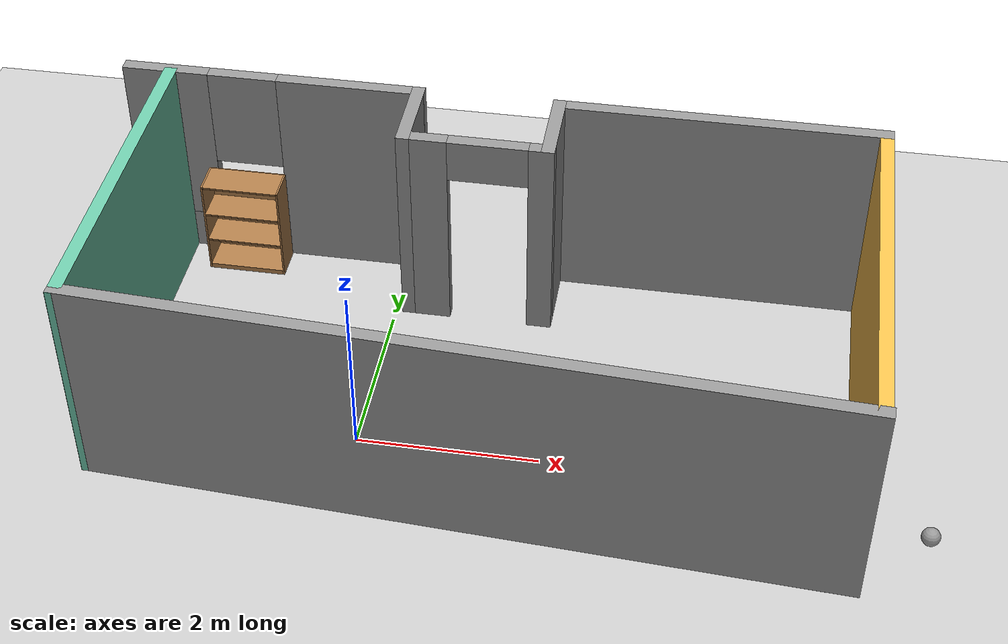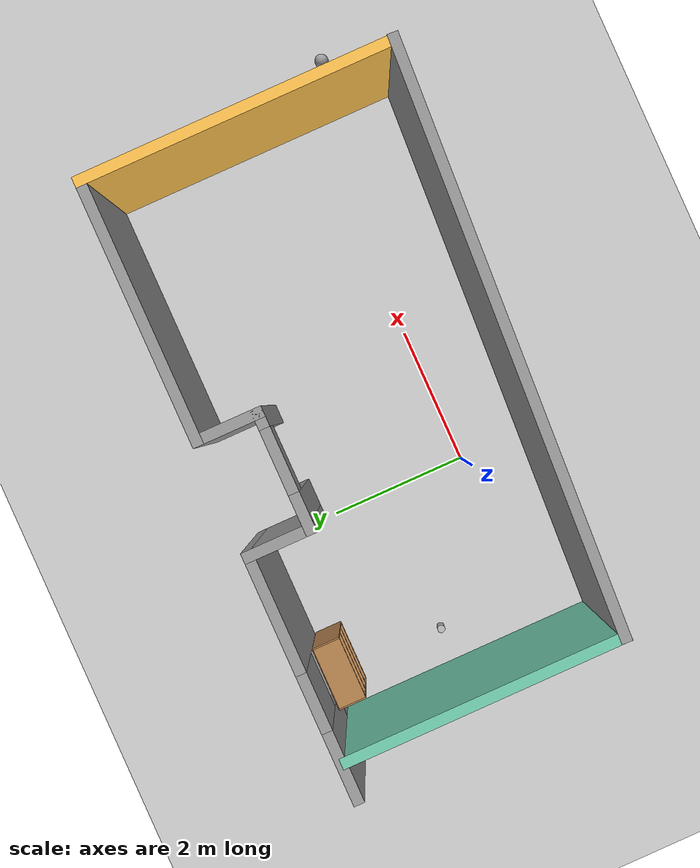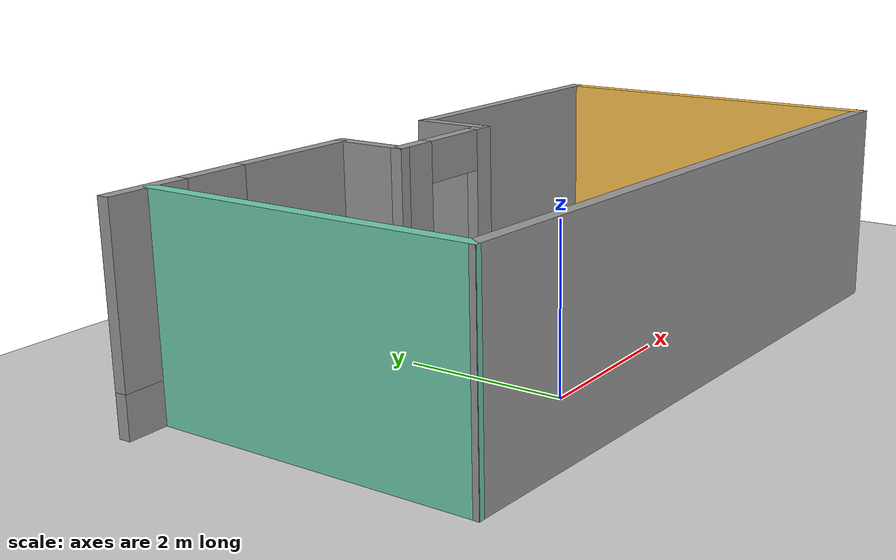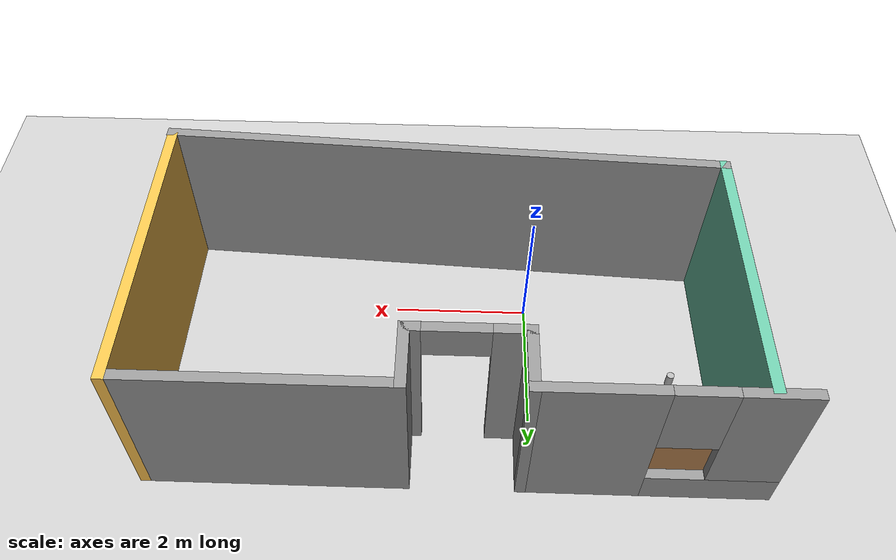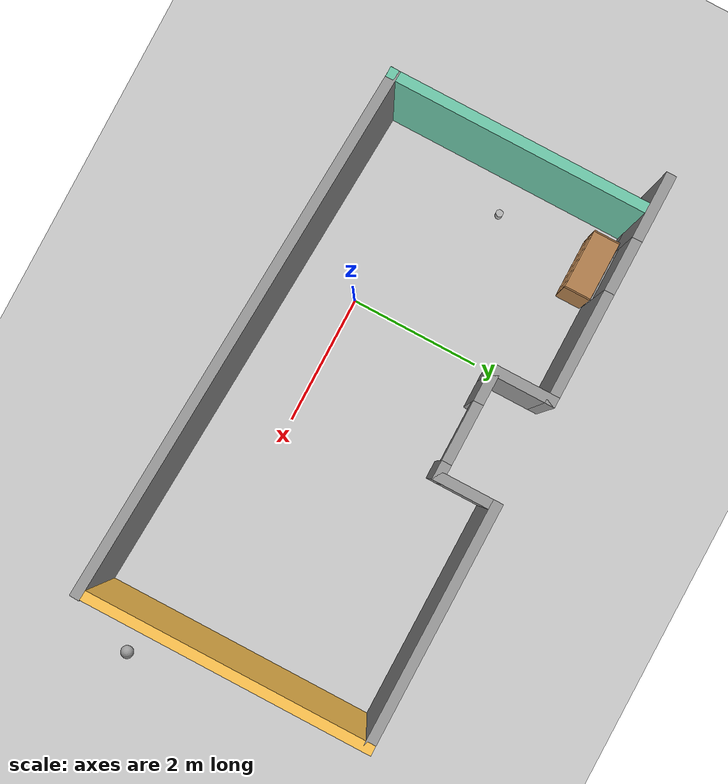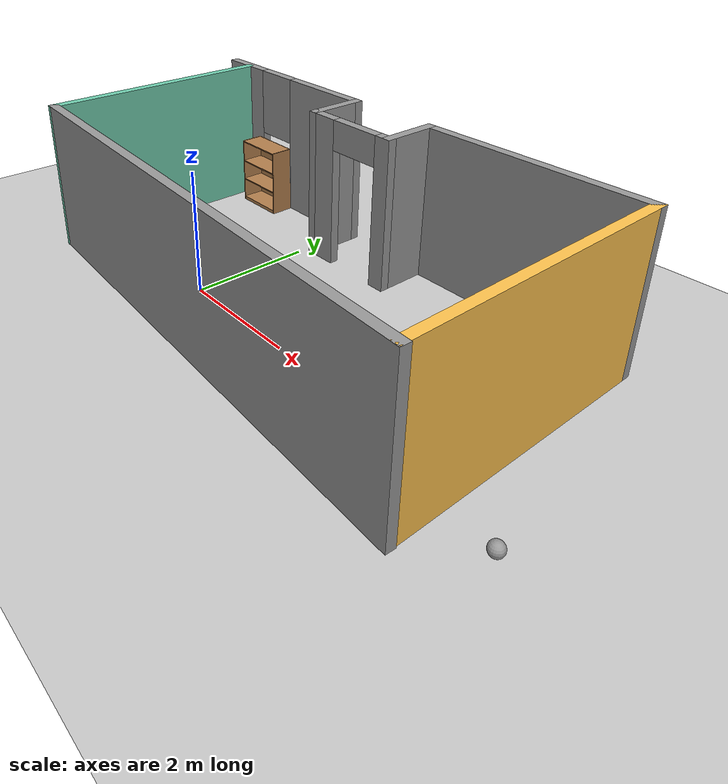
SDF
<sdf version="1.6">
 <world name="default">
  <plugin name="hello" filename="libhello.so"/>
  <light name="sun" type="directional">
   <pose>0 0 10 0 -0 0</pose>
   <diffuse>0.8 0.8 0.8 1</diffuse>
   <specular>0.1 0.1 0.1 1</specular>
   <attenuation>
    <range>1000</range>
    <constant>0.9</constant>
    <linear>0.01</linear>
    <quadratic>0.001</quadratic>
   </attenuation>
   <direction>-0.5 0.5 -1</direction>
  </light>
  <model name="ground_plane">
   <static>1</static>
   <link name="link">
    <collision name="collision">
     <geometry><plane><normal>0 0 1</normal><size>100 100</size></plane></geometry>
     <surface><friction><ode><mu>100</mu><mu2>50</mu2></ode></friction></surface>
    </collision>
    <visual name="visual">
     <cast_shadows>0</cast_shadows>
     <geometry><plane><normal>0 0 1</normal><size>100 100</size></plane></geometry>
     <material>
      <script><uri>file://media/materials/scripts/gazebo.material</uri><name>Gazebo/Grey</name></script>
     </material>
    </visual>
   </link>
  </model>
  <gravity>0 0 -9.8</gravity>
  <magnetic_field>6e-06 2.3e-05 -4.2e-05</magnetic_field>
  <atmosphere type="adiabatic"/>
  <physics name="default_physics" default="0" type="ode">
   <max_step_size>0.001</max_step_size>
   <real_time_factor>1</real_time_factor>
   <real_time_update_rate>1000</real_time_update_rate>
  </physics>
  <scene><ambient>0.4 0.4 0.4 1</ambient><background>0.7 0.7 0.7 1</background><shadows>1</shadows></scene>
  <spherical_coordinates>
   <surface_model>EARTH_WGS84</surface_model>
   <latitude_deg>0</latitude_deg>
   <longitude_deg>0</longitude_deg>
   <elevation>0</elevation>
   <heading_deg>0</heading_deg>
  </spherical_coordinates>
  <model name="building">
   <pose>1.07807 0.89796 0 0 -0 0</pose>
   <link name="Wall_0">
    <collision name="Wall_0_Collision">
     <geometry><box><size>8.24197 0.15 2.5</size></box></geometry>
     <pose>0 0 1.25 0 -0 0</pose>
    </collision>
    <visual name="Wall_0_Visual">
     <pose>0 0 1.25 0 -0 0</pose>
     <geometry><box><size>8.24197 0.15 2.5</size></box></geometry>
     <material>
      <script><uri>file://media/materials/scripts/gazebo.material</uri><name>Gazebo/Grey</name></script>
      <ambient>1 1 1 1</ambient>
     </material>
     <meta><layer>0</layer></meta>
    </visual>
    <pose>0.238016 -1.95802 0 0 0 -0.054402</pose>
   </link>
   <link name="Wall_1">
    <collision name="Wall_1_Collision">
     <geometry><box><size>4.5 0.15 2.5</size></box></geometry>
     <pose>0 0 1.25 0 -0 0</pose>
    </collision>
    <visual name="Wall_1_Visual">
     <pose>0 0 1.25 0 -0 0</pose>
     <geometry><box><size>4.5 0.15 2.5</size></box></geometry>
     <material>
      <script><uri>file://media/materials/scripts/gazebo.material</uri><name>Gazebo/Grey</name></script>
      <ambient>1 0.764706 0.305882 1</ambient>
     </material>
     <meta><layer>0</layer></meta>
    </visual>
    <pose>4.26802 0.006983 0 0 -0 1.5708</pose>
   </link>
   <link name="Wall_12">
    <collision name="Wall_12_Collision">
     <geometry><box><size>4 0.15 2.5</size></box></geometry>
     <pose>0 0 1.25 0 -0 0</pose>
    </collision>
    <visual name="Wall_12_Visual">
     <pose>0 0 1.25 0 -0 0</pose>
     <geometry><box><size>4 0.15 2.5</size></box></geometry>
     <material>
      <script><uri>file://media/materials/scripts/gazebo.material</uri><name>Gazebo/Grey</name></script>
      <ambient>0.435294 0.796078 0.67451 1</ambient>
     </material>
     <meta><layer>0</layer></meta>
    </visual>
    <pose>-3.80198 0.186983 0 0 -0 1.5708</pose>
   </link>
   <link name="Wall_5">
    <collision name="Wall_5_Collision">
     <geometry><box><size>3.75 0.15 2.5</size></box></geometry>
     <pose>0 0 1.25 0 -0 0</pose>
    </collision>
    <visual name="Wall_5_Visual">
     <pose>0 0 1.25 0 -0 0</pose>
     <geometry><box><size>3.75 0.15 2.5</size></box></geometry>
     <material>
      <script><uri>file://media/materials/scripts/gazebo.material</uri><name>Gazebo/Grey</name></script>
      <ambient>1 1 1 1</ambient>
     </material>
     <meta><layer>0</layer></meta>
    </visual>
    <pose>2.46802 2.18198 0 0 -0 3.14159</pose>
   </link>
   <link name="Wall_6">
    <collision name="Wall_6_Collision">
     <geometry><box><size>1 0.15 2.5</size></box></geometry>
     <pose>0 0 1.25 0 -0 0</pose>
    </collision>
    <visual name="Wall_6_Visual">
     <pose>0 0 1.25 0 -0 0</pose>
     <geometry><box><size>1 0.15 2.5</size></box></geometry>
     <material>
      <script><uri>file://media/materials/scripts/gazebo.material</uri><name>Gazebo/Grey</name></script>
      <ambient>1 1 1 1</ambient>
     </material>
     <meta><layer>0</layer></meta>
    </visual>
    <pose>0.668016 1.75698 0 0 0 -1.5708</pose>
   </link>
   <link name="Wall_7">
    <pose>-0.131984 1.33198 0 0 -0 3.14159</pose>
    <visual name="Wall_7_Visual_0">
     <pose>-0.7325 0 1.25 0 -0 0</pose>
     <geometry><box><size>0.285 0.15 2.5</size></box></geometry>
     <material>
      <script><uri>file://media/materials/scripts/gazebo.material</uri><name>Gazebo/Grey</name></script>
      <ambient>1 1 1 1</ambient>
     </material>
     <meta><layer>0</layer></meta>
    </visual>
    <collision name="Wall_7_Collision_0">
     <geometry><box><size>0.285 0.15 2.5</size></box></geometry>
     <pose>-0.7325 0 1.25 0 -0 0</pose>
    </collision>
    <visual name="Wall_7_Visual_1">
     <pose>0.5925 0 1.25 0 -0 0</pose>
     <geometry><box><size>0.565 0.15 2.5</size></box></geometry>
     <material>
      <script><uri>file://media/materials/scripts/gazebo.material</uri><name>Gazebo/Grey</name></script>
      <ambient>1 1 1 1</ambient>
     </material>
     <meta><layer>0</layer></meta>
    </visual>
    <collision name="Wall_7_Collision_1">
     <geometry><box><size>0.565 0.15 2.5</size></box></geometry>
     <pose>0.5925 0 1.25 0 -0 0</pose>
    </collision>
    <visual name="Wall_7_Visual_2">
     <pose>-0.14 0 2.25 0 -0 0</pose>
     <geometry><box><size>0.9 0.15 0.5</size></box></geometry>
     <material>
      <script><uri>file://media/materials/scripts/gazebo.material</uri><name>Gazebo/Grey</name></script>
      <ambient>1 1 1 1</ambient>
     </material>
     <meta><layer>0</layer></meta>
    </visual>
    <collision name="Wall_7_Collision_2">
     <geometry><box><size>0.9 0.15 0.5</size></box></geometry>
     <pose>-0.14 0 2.25 0 -0 0</pose>
    </collision>
   </link>
   <link name="Wall_8">
    <collision name="Wall_8_Collision">
     <geometry><box><size>1 0.15 2.5</size></box></geometry>
     <pose>0 0 1.25 0 -0 0</pose>
    </collision>
    <visual name="Wall_8_Visual">
     <pose>0 0 1.25 0 -0 0</pose>
     <geometry><box><size>1 0.15 2.5</size></box></geometry>
     <material>
      <script><uri>file://media/materials/scripts/gazebo.material</uri><name>Gazebo/Grey</name></script>
      <ambient>1 1 1 1</ambient>
     </material>
     <meta><layer>0</layer></meta>
    </visual>
    <pose>-0.931984 1.75698 0 0 -0 1.5708</pose>
   </link>
   <link name="Wall_9">
    <pose>-2.60698 2.18198 0 0 -0 3.14159</pose>
    <visual name="Wall_9_Visual_0">
     <pose>-0.8975 0 1.25 0 -0 0</pose>
     <geometry><box><size>1.705 0.15 2.5</size></box></geometry>
     <material>
      <script><uri>file://media/materials/scripts/gazebo.material</uri><name>Gazebo/Grey</name></script>
      <ambient>1 1 1 1</ambient>
     </material>
     <meta><layer>0</layer></meta>
    </visual>
    <collision name="Wall_9_Collision_0">
     <geometry><box><size>1.705 0.15 2.5</size></box></geometry>
     <pose>-0.8975 0 1.25 0 -0 0</pose>
    </collision>
    <visual name="Wall_9_Visual_1">
     <pose>0.8525 0 0.25 0 -0 0</pose>
     <geometry><box><size>1.795 0.15 0.5</size></box></geometry>
     <material>
      <script><uri>file://media/materials/scripts/gazebo.material</uri><name>Gazebo/Grey</name></script>
      <ambient>1 1 1 1</ambient>
     </material>
     <meta><layer>0</layer></meta>
    </visual>
    <collision name="Wall_9_Collision_1">
     <geometry><box><size>1.795 0.15 0.5</size></box></geometry>
     <pose>0.8525 0 0.25 0 -0 0</pose>
    </collision>
    <visual name="Wall_9_Visual_2">
     <pose>1.2525 0 1.5 0 -0 0</pose>
     <geometry><box><size>0.995 0.15 2</size></box></geometry>
     <material>
      <script><uri>file://media/materials/scripts/gazebo.material</uri><name>Gazebo/Grey</name></script>
      <ambient>1 1 1 1</ambient>
     </material>
     <meta><layer>0</layer></meta>
    </visual>
    <collision name="Wall_9_Collision_2">
     <geometry><box><size>0.995 0.15 2</size></box></geometry>
     <pose>1.2525 0 1.5 0 -0 0</pose>
    </collision>
    <visual name="Wall_9_Visual_3">
     <pose>0.355 0 1.9 0 -0 0</pose>
     <geometry><box><size>0.8 0.15 1.2</size></box></geometry>
     <material>
      <script><uri>file://media/materials/scripts/gazebo.material</uri><name>Gazebo/Grey</name></script>
      <ambient>1 1 1 1</ambient>
     </material>
     <meta><layer>0</layer></meta>
    </visual>
    <collision name="Wall_9_Collision_3">
     <geometry><box><size>0.8 0.15 1.2</size></box></geometry>
     <pose>0.355 0 1.9 0 -0 0</pose>
    </collision>
   </link>
   <static>1</static>
  </model>
  <model name="beer">
   <link name="link">
    <pose>0 0 0.115 0 -0 0</pose>
    <inertial>
     <mass>0.39</mass>
     <inertia><ixx>0.00058</ixx><ixy>0</ixy><ixz>0</ixz><iyy>0.00058</iyy><iyz>0</iyz><izz>0.00019</izz></inertia>
    </inertial>
    <collision name="collision">
     <geometry><cylinder><radius>0.055</radius><length>0.23</length></cylinder></geometry>
    </collision>
    <visual name="visual">
     <geometry><cylinder><radius>0.055</radius><length>0.23</length></cylinder></geometry>
     <material>
      <script>
       <uri>model://beer/materials/scripts</uri>
       <uri>model://beer/materials/textures</uri>
       <name>Beer/Diffuse</name>
      </script>
     </material>
    </visual>
   </link>
   <pose>-2.1264 1.28097 -7e-06 0 0 -3e-06</pose>
  </model>
  <model name="bookshelf">
   <static>1</static>
   <link name="link">
    <inertial><mass>1</mass></inertial>
    <collision name="back">
     <pose>0 0.005 0.6 0 -0 0</pose>
     <geometry><box><size>0.9 0.01 1.2</size></box></geometry>
    </collision>
    <visual name="visual1">
     <pose>0 0.005 0.6 0 -0 0</pose>
     <geometry><box><size>0.9 0.01 1.2</size></box></geometry>
     <material>
      <script><uri>file://media/materials/scripts/gazebo.material</uri><name>Gazebo/Wood</name></script>
     </material>
    </visual>
    <collision name="left_side">
     <pose>0.45 -0.195 0.6 0 -0 0</pose>
     <geometry><box><size>0.02 0.4 1.2</size></box></geometry>
    </collision>
    <visual name="visual2">
     <pose>0.45 -0.195 0.6 0 -0 0</pose>
     <geometry><box><size>0.02 0.4 1.2</size></box></geometry>
     <material>
      <script><uri>file://media/materials/scripts/gazebo.material</uri><name>Gazebo/Wood</name></script>
     </material>
    </visual>
    <collision name="right_side">
     <pose>-0.45 -0.195 0.6 0 -0 0</pose>
     <geometry><box><size>0.02 0.4 1.2</size></box></geometry>
    </collision>
    <visual name="visual3">
     <pose>-0.45 -0.195 0.6 0 -0 0</pose>
     <geometry><box><size>0.02 0.4 1.2</size></box></geometry>
     <material>
      <script><uri>file://media/materials/scripts/gazebo.material</uri><name>Gazebo/Wood</name></script>
     </material>
    </visual>
    <collision name="bottom">
     <pose>0 -0.195 0.03 0 -0 0</pose>
     <geometry><box><size>0.88 0.4 0.06</size></box></geometry>
    </collision>
    <visual name="visual4">
     <pose>0 -0.195 0.03 0 -0 0</pose>
     <geometry><box><size>0.88 0.4 0.06</size></box></geometry>
     <material>
      <script><uri>file://media/materials/scripts/gazebo.material</uri><name>Gazebo/Wood</name></script>
     </material>
    </visual>
    <collision name="top">
     <pose>0 -0.195 1.19 0 -0 0</pose>
     <geometry><box><size>0.88 0.4 0.02</size></box></geometry>
    </collision>
    <visual name="visual5">
     <pose>0 -0.195 1.19 0 -0 0</pose>
     <geometry><box><size>0.88 0.4 0.02</size></box></geometry>
     <material>
      <script><uri>file://media/materials/scripts/gazebo.material</uri><name>Gazebo/Wood</name></script>
     </material>
    </visual>
    <collision name="low_shelf">
     <pose>0 -0.195 0.43 0 -0 0</pose>
     <geometry><box><size>0.88 0.4 0.02</size></box></geometry>
    </collision>
    <visual name="visual6">
     <pose>0 -0.195 0.43 0 -0 0</pose>
     <geometry><box><size>0.88 0.4 0.02</size></box></geometry>
     <material>
      <script><uri>file://media/materials/scripts/gazebo.material</uri><name>Gazebo/Wood</name></script>
     </material>
    </visual>
    <collision name="high_shelf">
     <pose>0 -0.195 0.8 0 -0 0</pose>
     <geometry><box><size>0.88 0.4 0.02</size></box></geometry>
    </collision>
    <visual name="visual7">
     <pose>0 -0.195 0.8 0 -0 0</pose>
     <geometry><box><size>0.88 0.4 0.02</size></box></geometry>
     <material>
      <script><uri>file://media/materials/scripts/gazebo.material</uri><name>Gazebo/Wood</name></script>
     </material>
    </visual>
   </link>
   <pose>-1.92207 2.98053 0 0 -0 0</pose>
  </model>
  <model name="my_ball">
   <link name="link_0">
    <inertial>
     <mass>1</mass>
     <inertia><ixx>0.1</ixx><ixy>0</ixy><ixz>0</ixz><iyy>0.1</iyy><iyz>0</iyz><izz>0.1</izz></inertia>
    </inertial>
    <visual name="visual">
     <geometry><sphere><radius>0.1</radius></sphere></geometry>
     <material>
      <lighting>1</lighting>
      <script><uri>file://media/materials/scripts/gazebo.material</uri><name>Gazebo/Grey</name></script>
      <shader type="pixel"><normal_map>__default__</normal_map></shader>
      <ambient>1 1 1 1</ambient>
      <diffuse>1 1 1 1</diffuse>
      <specular>1 1 1 1</specular>
      <emissive>1 1 1 1</emissive>
     </material>
    </visual>
    <collision name="collision">
     <geometry><sphere><radius>0.1</radius></sphere></geometry>
     <surface>
      <friction>
       <ode><mu>1</mu><mu2>1</mu2><fdir1>0 0 0</fdir1><slip1>0</slip1><slip2>0</slip2></ode>
       <torsional>
        <coefficient>1</coefficient>
        <patch_radius>0</patch_radius>
        <surface_radius>0</surface_radius>
        <use_patch_radius>1</use_patch_radius>
        <ode><slip>0</slip></ode>
       </torsional>
      </friction>
      <bounce><restitution_coefficient>0</restitution_coefficient><threshold>1e+06</threshold></bounce>
      <contact>
       <collide_without_contact>0</collide_without_contact>
       <collide_without_contact_bitmask>1</collide_without_contact_bitmask>
       <collide_bitmask>1</collide_bitmask>
       <ode>
        <soft_cfm>0</soft_cfm>
        <soft_erp>0.2</soft_erp>
        <kp>1e+13</kp>
        <kd>1</kd>
        <max_vel>0.01</max_vel>
        <min_depth>0</min_depth>
       </ode>
       <bullet>
        <split_impulse>1</split_impulse>
        <split_impulse_penetration_threshold>-0.01</split_impulse_penetration_threshold>
        <soft_cfm>0</soft_cfm>
        <soft_erp>0.2</soft_erp>
        <kp>1e+13</kp>
        <kd>1</kd>
       </bullet>
      </contact>
     </surface>
    </collision>
   </link>
   <static>0</static>
   <pose>6.12474 -0.51683 0.1 0 -0 0</pose>
  </model>
 </world>
</sdf>
